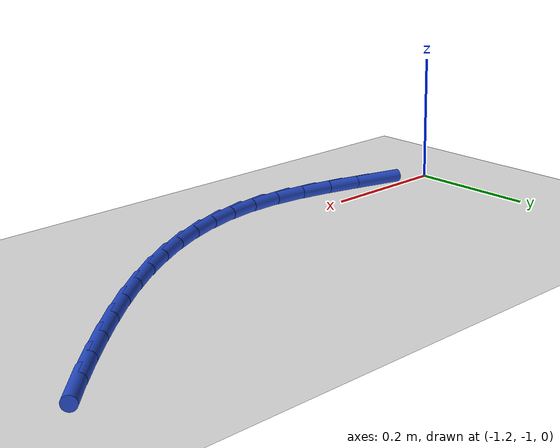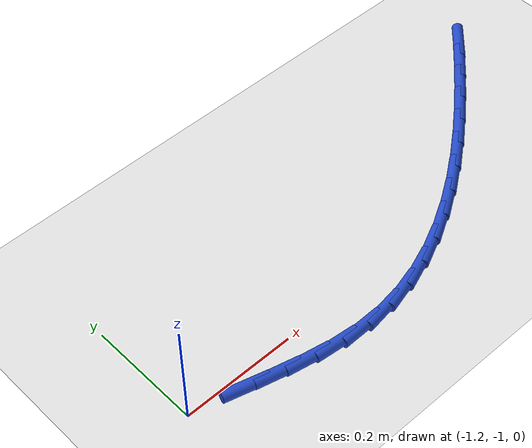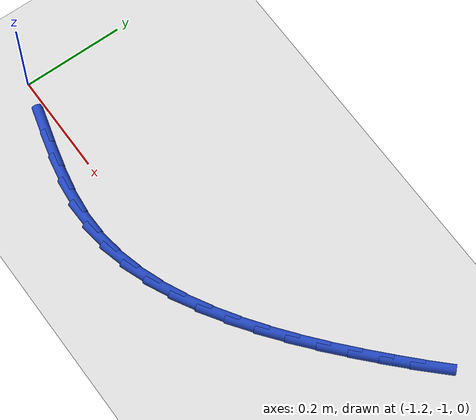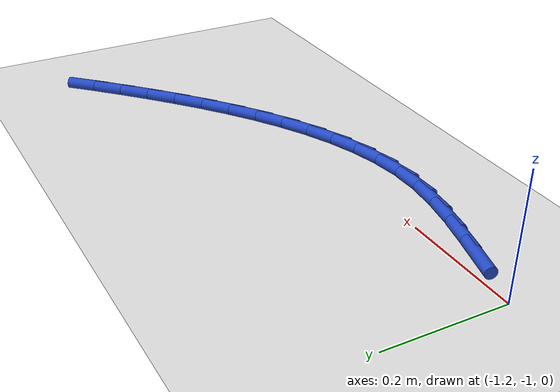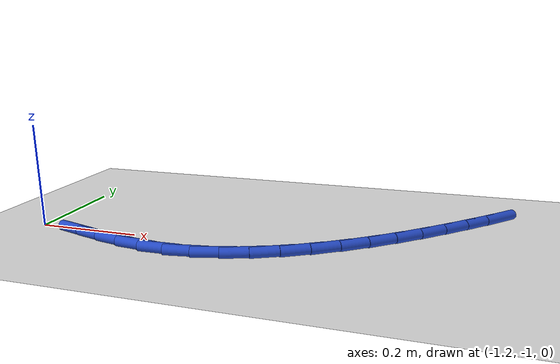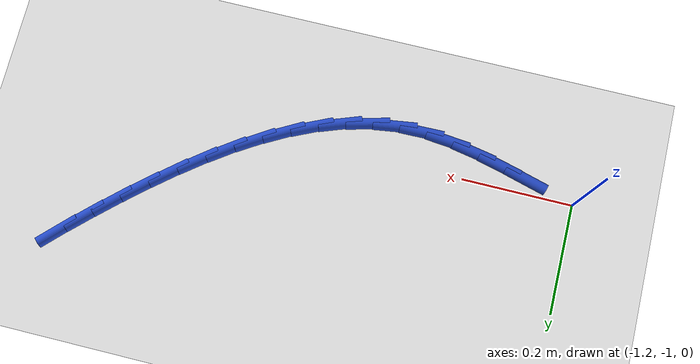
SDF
<sdf version="1.6">
 <world name="default">
  <model name="ground_plane">
   <static>1</static>
   <link name="link">
    <collision name="collision">
     <geometry><plane><normal>0 0 1</normal><size>100 100</size></plane></geometry>
     <surface><friction><ode><mu>100</mu><mu2>50</mu2></ode></friction></surface>
    </collision>
    <visual name="visual">
     <cast_shadows>0</cast_shadows>
     <geometry><plane><normal>0 0 1</normal><size>100 100</size></plane></geometry>
     <material>
      <script><uri>file://media/materials/scripts/gazebo.material</uri><name>Gazebo/WhiteGlow</name></script>
     </material>
    </visual>
   </link>
  </model>
  <model name="line">
   <link name="link_107">
    <pose>-1.1087229581876685 -1.0247065335669219 0.01 0 1.57 -0.27169472504867254</pose>
    <collision name="collision">
     <geometry><cylinder><radius>0.01</radius><length>0.08</length></cylinder></geometry>
    </collision>
    <visual name="visual">
     <material>
      <script><name>Gazebo/Blue</name><uri>file://media/materials/scripts/gazebo.material</uri></script>
     </material>
     <geometry><cylinder><radius>0.01</radius><length>0.08</length></cylinder></geometry>
    </visual>
   </link>
   <link name="link_108">
    <pose>-1.0583932706585786 -1.0387275554018305 0.01 0 1.57 -0.24566264617735395</pose>
    <collision name="collision">
     <geometry><cylinder><radius>0.01</radius><length>0.08</length></cylinder></geometry>
    </collision>
    <visual name="visual">
     <material>
      <script><name>Gazebo/Blue</name><uri>file://media/materials/scripts/gazebo.material</uri></script>
     </material>
     <geometry><cylinder><radius>0.01</radius><length>0.08</length></cylinder></geometry>
    </visual>
   </link>
   <link name="link_109">
    <pose>-1.0085252054910858 -1.05123081861572 0.01 0 1.57 -0.1897155175260191</pose>
    <collision name="collision">
     <geometry><cylinder><radius>0.01</radius><length>0.08</length></cylinder></geometry>
    </collision>
    <visual name="visual">
     <material>
      <script><name>Gazebo/Blue</name><uri>file://media/materials/scripts/gazebo.material</uri></script>
     </material>
     <geometry><cylinder><radius>0.01</radius><length>0.08</length></cylinder></geometry>
    </visual>
   </link>
   <link name="link_110">
    <pose>-0.959066948633315 -1.0607280329247075 0.01 0 1.57 -0.10154058236998513</pose>
    <collision name="collision">
     <geometry><cylinder><radius>0.01</radius><length>0.08</length></cylinder></geometry>
    </collision>
    <visual name="visual">
     <material>
      <script><name>Gazebo/Blue</name><uri>file://media/materials/scripts/gazebo.material</uri></script>
     </material>
     <geometry><cylinder><radius>0.01</radius><length>0.08</length></cylinder></geometry>
    </visual>
   </link>
   <link name="link_111">
    <pose>-0.9099666860333889 -1.065730908044912 0.01 0 1.57 0.018290117863803197</pose>
    <collision name="collision">
     <geometry><cylinder><radius>0.01</radius><length>0.08</length></cylinder></geometry>
    </collision>
    <visual name="visual">
     <material>
      <script><name>Gazebo/Blue</name><uri>file://media/materials/scripts/gazebo.material</uri></script>
     </material>
     <geometry><cylinder><radius>0.01</radius><length>0.08</length></cylinder></geometry>
    </visual>
   </link>
   <link name="link_112">
    <pose>-0.8611786616026578 -1.0648384698101974 0.01 0 1.57 0.14438093936068422</pose>
    <collision name="collision">
     <geometry><cylinder><radius>0.01</radius><length>0.08</length></cylinder></geometry>
    </collision>
    <visual name="visual">
     <material>
      <script><name>Gazebo/Blue</name><uri>file://media/materials/scripts/gazebo.material</uri></script>
     </material>
     <geometry><cylinder><radius>0.01</radius><length>0.08</length></cylinder></geometry>
    </visual>
   </link>
   <link name="link_113">
    <pose>-0.8127366011177989 -1.0577953515221306 0.01 0 1.57 0.25751206148430145</pose>
    <collision name="collision">
     <geometry><cylinder><radius>0.01</radius><length>0.08</length></cylinder></geometry>
    </collision>
    <visual name="visual">
     <material>
      <script><name>Gazebo/Blue</name><uri>file://media/materials/scripts/gazebo.material</uri></script>
     </material>
     <geometry><cylinder><radius>0.01</radius><length>0.08</length></cylinder></geometry>
    </visual>
   </link>
   <link name="link_114">
    <pose>-0.76473016591753 -1.0451524106104644 0.01 0 1.57 0.3563701195696866</pose>
    <collision name="collision">
     <geometry><cylinder><radius>0.01</radius><length>0.08</length></cylinder></geometry>
    </collision>
    <visual name="visual">
     <material>
      <script><name>Gazebo/Blue</name><uri>file://media/materials/scripts/gazebo.material</uri></script>
     </material>
     <geometry><cylinder><radius>0.01</radius><length>0.08</length></cylinder></geometry>
    </visual>
   </link>
   <link name="link_115">
    <pose>-0.7172501830671734 -1.027477306640901 0.01 0 1.57 0.4413539036370521</pose>
    <collision name="collision">
     <geometry><cylinder><radius>0.01</radius><length>0.08</length></cylinder></geometry>
    </collision>
    <visual name="visual">
     <material>
      <script><name>Gazebo/Blue</name><uri>file://media/materials/scripts/gazebo.material</uri></script>
     </material>
     <geometry><cylinder><radius>0.01</radius><length>0.08</length></cylinder></geometry>
    </visual>
   </link>
   <link name="link_116">
    <pose>-0.6703874796320527 -1.0053376991791432 0.01 0 1.57 0.5136146320289146</pose>
    <collision name="collision">
     <geometry><cylinder><radius>0.01</radius><length>0.08</length></cylinder></geometry>
    </collision>
    <visual name="visual">
     <material>
      <script><name>Gazebo/Blue</name><uri>file://media/materials/scripts/gazebo.material</uri></script>
     </material>
     <geometry><cylinder><radius>0.01</radius><length>0.08</length></cylinder></geometry>
    </visual>
   </link>
   <link name="link_117">
    <pose>-0.6242328826774904 -0.9793012477908941 0.01 0 1.57 0.5745822445174595</pose>
    <collision name="collision">
     <geometry><cylinder><radius>0.01</radius><length>0.08</length></cylinder></geometry>
    </collision>
    <visual name="visual">
     <material>
      <script><name>Gazebo/Blue</name><uri>file://media/materials/scripts/gazebo.material</uri></script>
     </material>
     <geometry><cylinder><radius>0.01</radius><length>0.08</length></cylinder></geometry>
    </visual>
   </link>
   <link name="link_118">
    <pose>-0.5788772192688115 -0.9499356120418566 0.01 0 1.57 0.6256756362381577</pose>
    <collision name="collision">
     <geometry><cylinder><radius>0.01</radius><length>0.08</length></cylinder></geometry>
    </collision>
    <visual name="visual">
     <material>
      <script><name>Gazebo/Blue</name><uri>file://media/materials/scripts/gazebo.material</uri></script>
     </material>
     <geometry><cylinder><radius>0.01</radius><length>0.08</length></cylinder></geometry>
    </visual>
   </link>
   <link name="link_119">
    <pose>-0.5344113164713383 -0.9178084514977336 0.01 0 1.57 0.6681550174676006</pose>
    <collision name="collision">
     <geometry><cylinder><radius>0.01</radius><length>0.08</length></cylinder></geometry>
    </collision>
    <visual name="visual">
     <material>
      <script><name>Gazebo/Blue</name><uri>file://media/materials/scripts/gazebo.material</uri></script>
     </material>
     <geometry><cylinder><radius>0.01</radius><length>0.08</length></cylinder></geometry>
    </visual>
   </link>
   <link name="link_120">
    <pose>-0.49092600135039444 -0.8834874257242278 0.01 0 1.57 0.7030608015427069</pose>
    <collision name="collision">
     <geometry><cylinder><radius>0.01</radius><length>0.08</length></cylinder></geometry>
    </collision>
    <visual name="visual">
     <material>
      <script><name>Gazebo/Blue</name><uri>file://media/materials/scripts/gazebo.material</uri></script>
     </material>
     <geometry><cylinder><radius>0.01</radius><length>0.08</length></cylinder></geometry>
    </visual>
   </link>
   <link name="link_121">
    <pose>-0.44851210097130323 -0.8475401942870421 0.01 0 1.57 0.7311960009184953</pose>
    <collision name="collision">
     <geometry><cylinder><radius>0.01</radius><length>0.08</length></cylinder></geometry>
    </collision>
    <visual name="visual">
     <material>
      <script><name>Gazebo/Blue</name><uri>file://media/materials/scripts/gazebo.material</uri></script>
     </material>
     <geometry><cylinder><radius>0.01</radius><length>0.08</length></cylinder></geometry>
    </visual>
   </link>
   <link name="link_122">
    <pose>-0.4072604423993874 -0.8105344167518788 0.01 0 1.57 0.7531479434267584</pose>
    <collision name="collision">
     <geometry><cylinder><radius>0.01</radius><length>0.08</length></cylinder></geometry>
    </collision>
    <visual name="visual">
     <material>
      <script><name>Gazebo/Blue</name><uri>file://media/materials/scripts/gazebo.material</uri></script>
     </material>
     <geometry><cylinder><radius>0.01</radius><length>0.08</length></cylinder></geometry>
    </visual>
   </link>
   <link name="link_123">
    <pose>-0.36726196165319597 -0.77303609187866 0.01 0 1.57 0.7725886906640985</pose>
    <collision name="collision">
     <geometry><cylinder><radius>0.01</radius><length>0.08</length></cylinder></geometry>
    </collision>
    <visual name="visual">
     <material>
      <script><name>Gazebo/Blue</name><uri>file://media/materials/scripts/gazebo.material</uri></script>
     </material>
     <geometry><cylinder><radius>0.01</radius><length>0.08</length></cylinder></geometry>
    </visual>
   </link>
   <link name="link_124">
    <pose>-0.32862311338384614 -0.7353746633838425 0.01 0 1.57 0.7964971577898576</pose>
    <collision name="collision">
     <geometry><cylinder><radius>0.01</radius><length>0.08</length></cylinder></geometry>
    </collision>
    <visual name="visual">
     <material>
      <script><name>Gazebo/Blue</name><uri>file://media/materials/scripts/gazebo.material</uri></script>
     </material>
     <geometry><cylinder><radius>0.01</radius><length>0.08</length></cylinder></geometry>
    </visual>
   </link>
  </model>
 </world>
</sdf>
